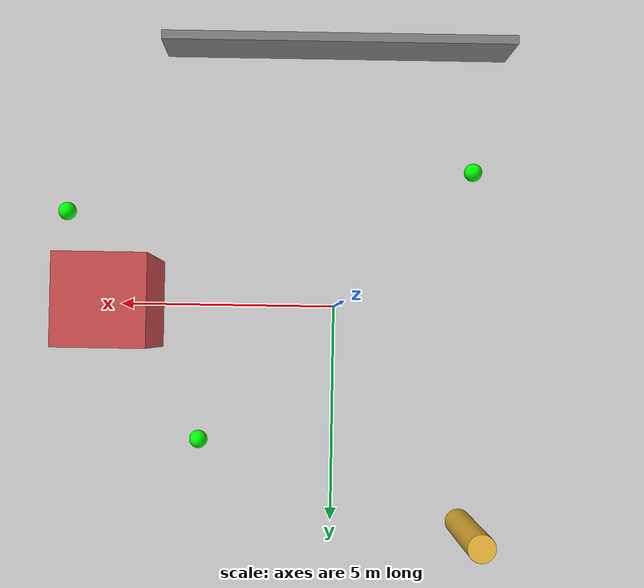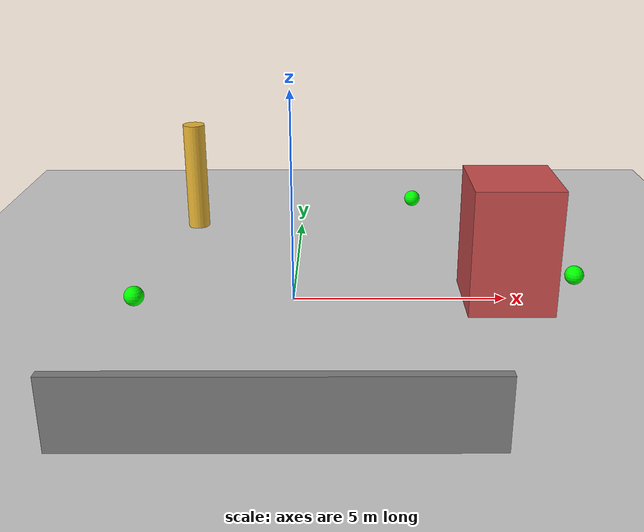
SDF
<?xml version="1.0"?>
<sdf version="1.7">
  <world name="drone_world">
    <include>
      <uri>model://sun</uri>
    </include>
    <include>
      <uri>model://ground_plane</uri>
    </include>

    <!-- Obstacle 1: Building -->
    <model name="building1">
      <static>true</static>
      <pose>5 0 1.5 0 0 0</pose>
      <link name="link">
        <collision name="collision">
          <geometry><box><size>2 2 3</size></box></geometry>
        </collision>
        <visual name="visual">
          <geometry><box><size>2 2 3</size></box></geometry>
          <material>
            <ambient>0.8 0.3 0.3 1</ambient>
            <diffuse>0.8 0.3 0.3 1</diffuse>
          </material>
        </visual>
      </link>
    </model>

    <!-- Obstacle 2: Pillar -->
    <model name="pillar1">
      <static>true</static>
      <pose>-3 5 1.5 0 0 0</pose>
      <link name="link">
        <collision name="collision">
          <geometry><cylinder><radius>0.3</radius><length>3</length></cylinder></geometry>
        </collision>
        <visual name="visual">
          <geometry><cylinder><radius>0.3</radius><length>3</length></cylinder></geometry>
          <material>
            <ambient>0.9 0.7 0.2 1</ambient>
          </material>
        </visual>
      </link>
    </model>

    <!-- Obstacle 3: Wall -->
    <model name="wall1">
      <static>true</static>
      <pose>0 -6 0.75 0 0 0</pose>
      <link name="link">
        <collision name="collision">
          <geometry><box><size>8 0.2 1.5</size></box></geometry>
        </collision>
        <visual name="visual">
          <geometry><box><size>8 0.2 1.5</size></box></geometry>
          <material>
            <ambient>0.5 0.5 0.5 1</ambient>
          </material>
        </visual>
      </link>
    </model>

    <!-- Waypoint markers (visual only) -->
    <model name="waypoint1">
      <static>true</static>
      <pose>3 3 1.5 0 0 0</pose>
      <link name="link">
        <visual name="visual">
          <geometry><sphere><radius>0.2</radius></sphere></geometry>
          <material>
            <ambient>0 1 0 1</ambient>
            <emissive>0 0.5 0 1</emissive>
          </material>
        </visual>
      </link>
    </model>
    <model name="waypoint2">
      <static>true</static>
      <pose>-3 -3 1.5 0 0 0</pose>
      <link name="link">
        <visual name="visual">
          <geometry><sphere><radius>0.2</radius></sphere></geometry>
          <material>
            <ambient>0 1 0 1</ambient>
            <emissive>0 0.5 0 1</emissive>
          </material>
        </visual>
      </link>
    </model>
    <model name="waypoint3">
      <static>true</static>
      <pose>6 -2 1.5 0 0 0</pose>
      <link name="link">
        <visual name="visual">
          <geometry><sphere><radius>0.2</radius></sphere></geometry>
          <material>
            <ambient>0 1 0 1</ambient>
            <emissive>0 0.5 0 1</emissive>
          </material>
        </visual>
      </link>
    </model>
  </world>
</sdf>
